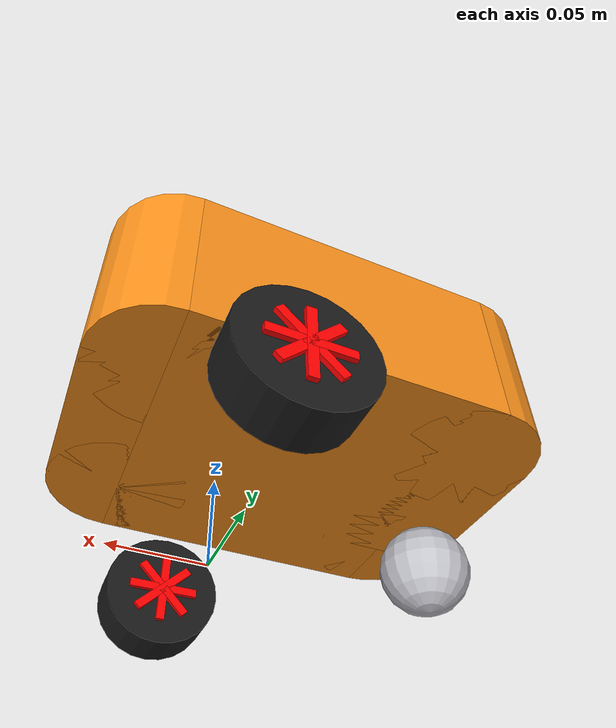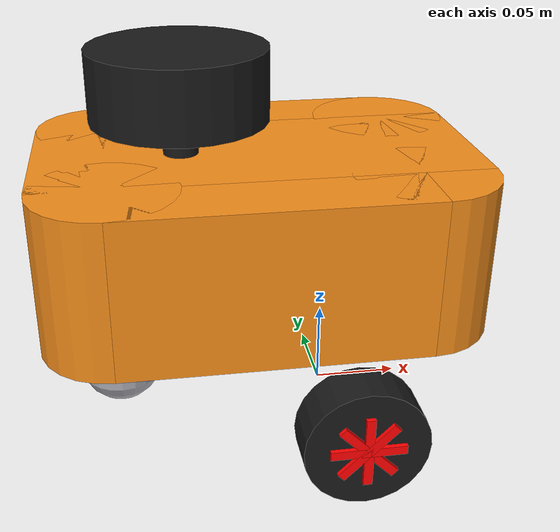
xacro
<?xml version="1.0"?>
<robot name="mobo_bot" xmlns:xacro="http://www.ros.org/wiki/xacro">

    <!-- ########### ARGUMENTS ######################### -->
    <xacro:arg name="use_ros2_control" default="false"/>

    <xacro:include filename="color_macros.xacro" />
    <xacro:include filename="inertia_macros.xacro" />

    <xacro:include filename="robot_core.xacro" />

    <xacro:if value="$(arg use_ros2_control)">
        <xacro:include filename="controllers/gazebo_hw_ros2_control.xacro" />
    </xacro:if>
    <xacro:unless value="$(arg use_ros2_control)">
        <xacro:include filename="controllers/gazebo_control.xacro" />
    </xacro:unless>

</robot>

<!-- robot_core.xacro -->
<robot name="mobo_bot" xmlns:xacro="http://www.ros.org/wiki/xacro">

    <xacro:include filename="other_parts/box_with_fillet_macro.xacro"/>
    <xacro:include filename="other_parts/drive_wheel_macro.xacro"/>

    <xacro:include filename="sensors/sonar.xacro"/>
    <xacro:include filename="sensors/lidar.xacro"/>

    <xacro:property name="chassis_length" value="0.25"/>
    <xacro:property name="chassis_width" value="0.18"/>
    <xacro:property name="chassis_height" value="0.09"/>
    <xacro:property name="chassis_mass" value="3.0"/>

    <xacro:property name="wheel_seperation" value="0.214"/>
    <xacro:property name="wheel_radius" value="0.034"/>
    <xacro:property name="wheel_width" value="0.026"/>
    <xacro:property name="wheel_mass" value="0.08"/>

    <xacro:property name="castor_wheel_radius" value="0.025"/>
    <xacro:property name="castor_wheel_mass" value="0.04"/>

    <!-- BASE LINK -->

    <link name="base_link">
    </link>

    <!-- CHASSIS LINK -->

    <joint name="chassis_joint" type="fixed">
        <parent link="base_link"/>
        <child link="chassis"/>
        <origin xyz="0 0 ${wheel_radius*2}"/>
    </joint>

    <link name="chassis">
        <xacro:insert_box_with_fillet x="${-chassis_length/6}" y="0" z="${chassis_height/2}"
            size_x="${chassis_length}" size_y="${chassis_width}" size_z="${chassis_height}"
            fillet_radius="0.04" material="orange"/>
        <collision>
           <origin xyz="${-chassis_length/6} 0 ${chassis_height/2}" rpy="0 0 0"/>
            <geometry>
                <box size="${chassis_length} ${chassis_width} ${chassis_height}"/>
            </geometry>
        </collision>
        <xacro:inertial_box mass="${chassis_mass}" x="${chassis_length}" y="${chassis_width}" z="${chassis_height}">
            <origin xyz="${-chassis_length/6} 0 ${wheel_radius*2}" rpy="0 0 0"/>
        </xacro:inertial_box>
    </link>
    <gazebo reference="chassis">
        <material>Gazebo/Orange</material>
    </gazebo>

    <!-- LEFT AND RIGHT DRIVE WHEELS -->

    <xacro:insert_drive_wheel
        base_name="left_wheel"
        parent_name="chassis"
        x="0" y="${wheel_seperation/2}" z="${-wheel_radius}"
        mass="${wheel_mass}"
        radius="${wheel_radius}"
        thickness="${wheel_width}"
        spoke_width="0.005"/>

    <xacro:insert_drive_wheel
        base_name="right_wheel"
        parent_name="chassis"
        x="0" y="${-wheel_seperation/2}" z="${-wheel_radius}"
        mass="${wheel_mass}"
        radius="${wheel_radius}"
        thickness="${wheel_width}"
        spoke_width="0.005"/>

    <!--  castor WHEEL LINK -->

    <joint name="castor_wheel_joint" type="fixed">
        <parent link="chassis"/>
        <child link="castor_wheel"/>
        <origin xyz="${-chassis_length/2} 0 ${-1*((wheel_radius*2)-castor_wheel_radius)}"/>
    </joint>

    <link name="castor_wheel">
        <visual>
            <origin xyz="0 0 0" rpy="0 0 0"/>
            <geometry>
                <sphere radius="${castor_wheel_radius}" />
            </geometry>
            <material name="silver"/>
        </visual>
        <collision>
           <origin xyz="0 0 0" rpy="0 0 0"/>
            <geometry>
                <sphere radius="${castor_wheel_radius}" />
            </geometry>
        </collision>
        <xacro:inertial_sphere mass="${castor_wheel_mass}" radius="${castor_wheel_radius}">
            <origin xyz="0 0 0" rpy="0 0 0"/>
        </xacro:inertial_sphere>
    </link>

    <gazebo reference="castor_wheel">
        <mu1>0.001</mu1>
        <mu2>0.001</mu2>
        <material>Gazebo/Silver</material>
    </gazebo>

    <!--  sonar -->
    <xacro:insert_sonar
        base_name="sonar"
        parent_name="chassis"
        x="${(chassis_length/6)*2}" y="0" z="${chassis_height/2}"
        mass="0.0005"
        min_range="0.02" max_range="3.0"
        resolution="0.01" visualize="false"/>

     <!--  lidar -->
    <xacro:property name="lidar_z_offset" value="0.04"/>
    <xacro:insert_lidar
        base_name="lidar"
        parent_name="chassis"
        x="${-chassis_length/3}" y="0" z="${chassis_height+lidar_z_offset}"
        mass="0.1" samples="360"
        min_angle="${-pi*2}" max_angle="${pi*2}"
        min_range="0.1" max_range="10"
        visualize="false"/>

    <!--  imu -->

    <!-- camera -->

</robot>

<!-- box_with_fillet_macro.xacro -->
<robot name="mobo_bot" xmlns:xacro="http://www.ros.org/wiki/xacro" >

    <xacro:macro name="insert_box_with_fillet" params="x y z size_x size_y size_z fillet_radius material">
            <!-- logitudinal box -->
            <visual>
                <origin xyz="${x} ${y} ${z}" rpy="0 0 0"/>
                <geometry>
                    <box size="${size_x} ${size_y-(2*fillet_radius)} ${size_z}"/>
                </geometry>
                <material name="${material}"/>
            </visual>
            <!-- lateral box -->
            <visual>
                <origin xyz="${x} ${y} ${z}" rpy="0 0 0"/>
                <geometry>
                    <box size="${size_x-(2*fillet_radius)} ${size_y} ${size_z}"/>
                </geometry>
                <material name="${material}"/>
            </visual>
            <!-- cylinder1 -->
            <visual>
                <origin xyz="${x+((size_x/2)-fillet_radius)} ${y+((size_y/2)-fillet_radius)} ${z}" rpy="0 0 0"/>
                <geometry>
                    <cylinder length="${size_z}" radius="${fillet_radius}"/>
                </geometry>
                <material name="${material}"/>
            </visual>
            <!-- cylinder2 -->
            <visual>
                <origin xyz="${x+((size_x/2)-fillet_radius)} ${y-((size_y/2)-fillet_radius)} ${z}" rpy="0 0 0"/>
                <geometry>
                    <cylinder length="${size_z}" radius="${fillet_radius}"/>
                </geometry>
                <material name="${material}"/>
            </visual>
            <!-- cylinder3 -->
            <visual>
                <origin xyz="${x-((size_x/2)-fillet_radius)} ${y+((size_y/2)-fillet_radius)} ${z}" rpy="0 0 0"/>
                <geometry>
                    <cylinder length="${size_z}" radius="${fillet_radius}"/>
                </geometry>
                <material name="${material}"/>
            </visual>
            <!-- cylinder4 -->
            <visual>
                <origin xyz="${x-((size_x/2)-fillet_radius)} ${y-((size_y/2)-fillet_radius)} ${z}" rpy="0 0 0"/>
                <geometry>
                    <cylinder length="${size_z}" radius="${fillet_radius}"/>
                </geometry>
                <material name="${material}"/>
            </visual>
    </xacro:macro>

</robot>

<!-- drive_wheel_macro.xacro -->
<robot name="mobo_bot" xmlns:xacro="http://www.ros.org/wiki/xacro" >

    <xacro:macro name="material_black">
        <material name="black">
            <color rgba="0.1 0.1 0.1 1"/>
        </material>
    </xacro:macro>

    <xacro:macro name="material_red">
        <material name="red">
            <color rgba="1 0 0 1"/>
        </material>
    </xacro:macro>

    <xacro:macro name="inertial_cylinder" params="mass length radius *origin">
        <inertial>
            <xacro:insert_block name="origin"/>
            <mass value="${mass}" />
            <inertia ixx="${(1/12) * mass * (3*radius*radius + length*length)}" ixy="0.0" ixz="0.0"
                    iyy="${(1/12) * mass * (3*radius*radius + length*length)}" iyz="0.0"
                    izz="${(1/2) * mass * (radius*radius)}" />
        </inertial>
    </xacro:macro>

     <!-- GAZEBO WHEEL PARAMETERS -->
    <xacro:macro name="gazebo_wheel_settings" params="name">
        <gazebo reference="${name}">
            <mu1>1.0</mu1>
            <mu2>1.0</mu2>
            <material>Gazebo/FlatBlack</material>
        </gazebo>
    </xacro:macro>

    <xacro:macro name="insert_drive_wheel" params="base_name parent_name x y z mass radius thickness spoke_width">
        <joint name="${base_name}_joint" type="continuous">
            <parent link="${parent_name}"/>
            <child link="${base_name}"/>
            <origin xyz="${x} ${y} ${z}" rpy="${-pi/2} 0 0"/>
            <axis xyz="0 0 1"/>
        </joint>

        <link name="${base_name}">
            <visual>
                <origin xyz="0 0 0" rpy="0 0 0"/>
                <geometry>
                    <cylinder radius="${radius}" length="${thickness}"/>
                </geometry>
                <xacro:material_black/>
            </visual>
            <collision>
            <origin xyz="0 0 0" rpy="0 0 0"/>
                <geometry>
                    <cylinder radius="${radius}" length="${thickness}"/>
                </geometry>
            </collision>
            <xacro:inertial_cylinder mass="${mass}" length="${thickness}" radius="${radius}">
                <origin xyz="0 0 0" rpy="0 0 0"/>
            </xacro:inertial_cylinder>
        </link>

        <xacro:gazebo_wheel_settings name="${base_name}"/>

        <joint name="${base_name}_rim_joint" type="fixed">
            <parent link="${base_name}"/>
            <child link="${base_name}_rim"/>
            <origin xyz="0 0 0" rpy="0 0 0"/>
        </joint>

        <link name="${base_name}_rim">
            <visual>
                <origin xyz="0 0 0" rpy="0 0 0"/>
                <geometry>
                    <box size="${spoke_width} ${radius*1.2} ${thickness+0.005}"/>
                </geometry>
                <xacro:material_red/>
            </visual>
            <visual>
                <origin xyz="0 0 0" rpy="0 0 ${pi/2}"/>
                <geometry>
                    <box size="${spoke_width} ${radius*1.2} ${thickness+0.005}"/>
                </geometry>
                <xacro:material_red/>
            </visual>
            <visual>
                <origin xyz="0 0 0" rpy="0 0 ${-pi/4}"/>
                <geometry>
                    <box size="${spoke_width} ${radius*1.2} ${thickness+0.005}"/>
                </geometry>
                <xacro:material_red/>
            </visual>
            <visual>
                <origin xyz="0 0 0" rpy="0 0 ${pi/4}"/>
                <geometry>
                    <box size="${spoke_width} ${radius*1.2} ${thickness+0.005}"/>
                </geometry>
                <xacro:material_red/>
            </visual>

        </link>

        <gazebo reference="${base_name}_rim">
            <material>Gazebo/Red</material>
        </gazebo>

    </xacro:macro>

</robot>

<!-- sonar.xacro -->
<robot xmlns:xacro="http://www.ros.org/wiki/xacro">

    <xacro:property name="deg2rad" value="0.017460317"/>
    <xacro:property name="scan_angle" value="1"/>

    <xacro:macro name="insert_sonar" params="base_name parent_name x y z mass">
        <joint name="${base_name}_joint" type="fixed">
            <parent link="${parent_name}"/>
            <child link="${base_name}"/>
            <origin xyz="${x} ${y} ${z}" rpy="0 0 0"/>
        </joint>

        <link name="${base_name}">
            <visual>
                <origin xyz="-0.005 0 0" rpy="0 ${pi/2} 0"/>
                <geometry>
                    <cylinder radius="0.015" length="0.01" />
                </geometry>
                <material name="blue"/>
            </visual>

            <collision>
                <origin xyz="-0.005 0 0" rpy="0 ${pi/2} 0"/>
                <geometry>
                    <cylinder radius="0.015" length="0.01" />
                </geometry>
            </collision>

            <xacro:inertial_cylinder mass="${mass}" length="0.01" radius="0.01">
                <origin xyz="-0.005 0 0" rpy="0 0 0"/>
            </xacro:inertial_cylinder>
        </link>

        <gazebo reference="${base_name}">
            <material>Gazebo/Blue</material>

            <sensor name="${base_name}" type="ray">
                <always_on>true</always_on>
                <visualize>false</visualize>
                <pose>0.0 0 0.0 0 0 0</pose>
                <update_rate>5</update_rate>
                <ray>
                    <scan>
                        <horizontal>
                        <samples>20</samples>
                        <resolution>1</resolution>
                        <min_angle>${-scan_angle * deg2rad}</min_angle>
                        <max_angle>${scan_angle * deg2rad}</max_angle>
                        </horizontal>
                        <vertical>
                        <samples>20</samples>
                        <resolution>1</resolution>
                        <min_angle>${-scan_angle * deg2rad}</min_angle>
                        <max_angle>${scan_angle * deg2rad}</max_angle>
                        </vertical>
                    </scan>
                    <range>
                        <min>0.01</min>
                        <max>2</max>
                        <resolution>0.02</resolution>
                    </range>
                </ray>

                <plugin name="${base_name}_plugin" filename="libgazebo_ros_ray_sensor.so">
                    <ros>
                        <namespace>sonar</namespace>
                        <remapping>~/out:=range</remapping>
                    </ros>
                    <output_type>sensor_msgs/Range</output_type>
                    <radiation_type>ultrasound</radiation_type>
                    <frame_name>${base_name}</frame_name>
                </plugin>
            </sensor>
        </gazebo>
    </xacro:macro>

</robot>

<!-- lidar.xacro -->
<robot xmlns:xacro="http://www.ros.org/wiki/xacro" >

    <xacro:macro name="insert_lidar" params="base_name parent_name x y z mass">
        <joint name="${base_name}_joint" type="fixed">
            <parent link="${parent_name}"/>
            <child link="${base_name}"/>
            <origin xyz="${x} ${y} ${z}" rpy="0 0 0"/>
        </joint>

        <link name="${base_name}">
            <visual>
                <origin xyz="0 0 0"/>
                <geometry>
                    <cylinder radius="0.05" length="0.04"/>
                </geometry>
                <material name="black"/>
            </visual>
            <visual>
                <origin xyz="0 0 -0.05"/>
                <geometry>
                    <cylinder radius="0.01" length="0.1"/>
                </geometry>
                <material name="black"/>
            </visual>
            <collision>
                <geometry>
                    <cylinder radius="0.05" length="0.04"/>
                </geometry>
            </collision>
            <xacro:inertial_cylinder mass="${mass}" length="0.04" radius="0.05">
                <origin xyz="0 0 0" rpy="0 0 0"/>
            </xacro:inertial_cylinder>
        </link>

        <gazebo reference="${base_name}">
            <material>Gazebo/DarkGrey</material>

            <sensor name="${base_name}" type="ray">
                <pose> 0 0 0 0 0 0 </pose>
                <visualize>false</visualize>
                <update_rate>10</update_rate>
                <ray>
                    <scan>
                        <horizontal>
                            <samples>360</samples>
                            <min_angle>-3.14</min_angle>
                            <max_angle>3.14</max_angle>
                        </horizontal>
                    </scan>
                    <range>
                        <min>0.2</min>
                        <max>10</max>
                    </range>
                </ray>
                <plugin name="${base_name}_controller" filename="libgazebo_ros_ray_sensor.so">
                    <ros>
                        <argument>~/out:=scan</argument>
                    </ros>
                    <output_type>sensor_msgs/LaserScan</output_type>
                    <frame_name>${base_name}</frame_name>
                </plugin>
            </sensor>
        </gazebo>
    </xacro:macro>

</robot>
